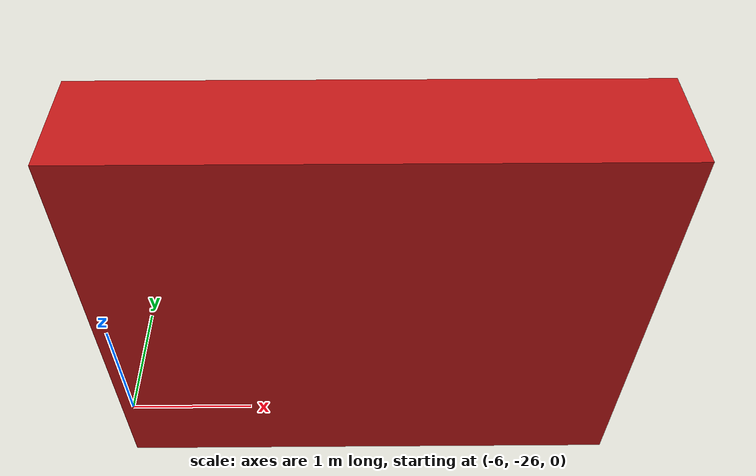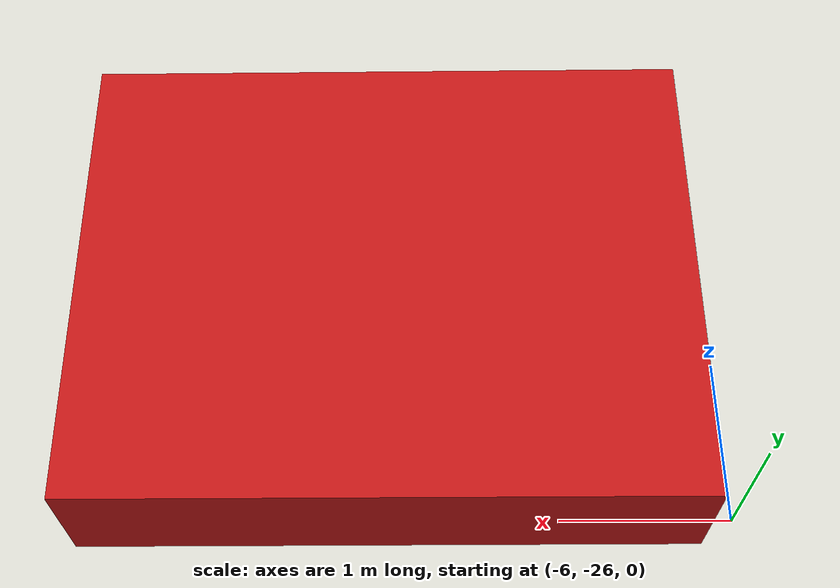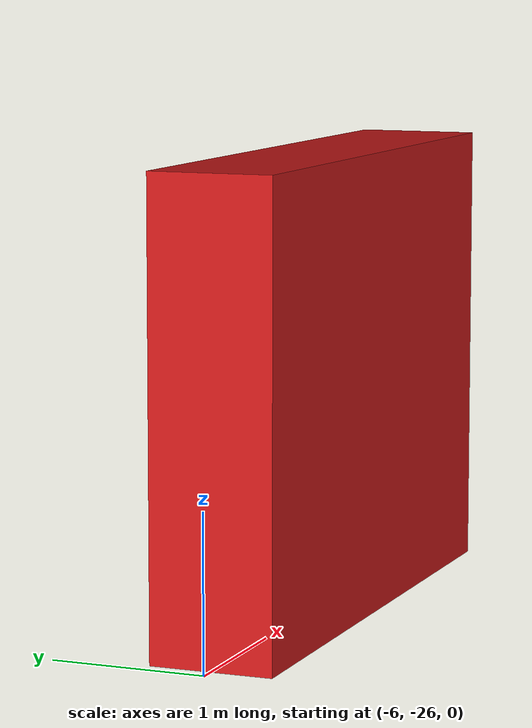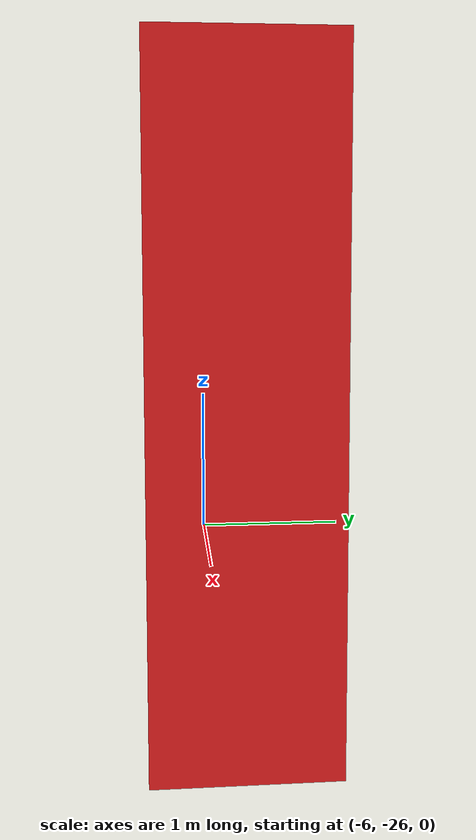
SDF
<?xml version="1.0"?>
<sdf version="1.9">
  <!-- Gazebo-only negative case: static bar spans the corridor at the same
       scan plane as the supported protrusion fixtures. No bypass exists. -->
  <model name="blocked_passage">
    <static>true</static>
    <pose>-4.0 -26.0 1.5 0 0 0</pose>
    <link name="body">
      <collision name="collision">
        <geometry><box><size>3.8 0.8 3.0</size></box></geometry>
      </collision>
      <visual name="visual">
        <geometry><box><size>3.8 0.8 3.0</size></box></geometry>
        <material>
          <ambient>0.8 0.1 0.1 1</ambient>
          <diffuse>0.8 0.1 0.1 1</diffuse>
        </material>
      </visual>
    </link>
  </model>
</sdf>
